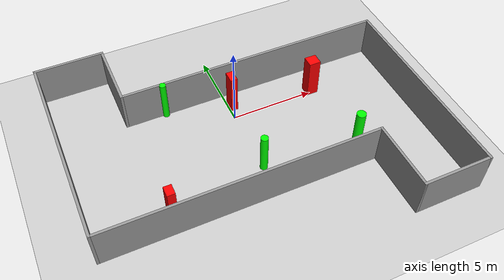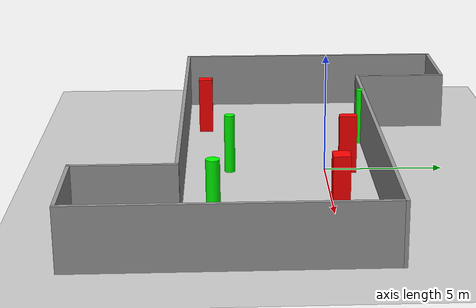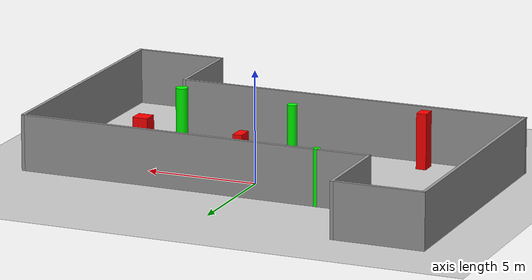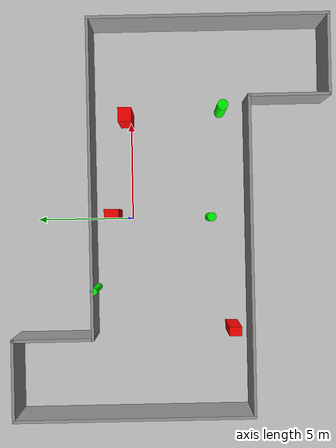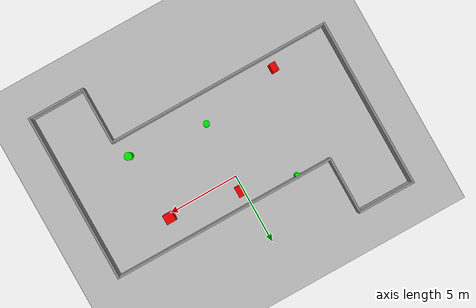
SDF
<sdf version="1.7">
 <world name="default">
  <light name="sun" type="directional">
   <pose>0 0 10 0 -0 0</pose>
   <diffuse>0.8 0.8 0.8 1</diffuse>
   <specular>0.2 0.2 0.2 1</specular>
   <attenuation>
    <range>1000</range>
    <constant>0.9</constant>
    <linear>0.01</linear>
    <quadratic>0.001</quadratic>
   </attenuation>
   <direction>-0.5 0.1 -0.9</direction>
   <spot><inner_angle>0</inner_angle><outer_angle>0</outer_angle><falloff>0</falloff></spot>
  </light>
  <model name="ground_plane">
   <static>1</static>
   <link name="link">
    <collision name="collision">
     <geometry><plane><normal>0 0 1</normal><size>100 100</size></plane></geometry>
     <surface>
      <contact><collide_bitmask>65535</collide_bitmask></contact>
      <friction><ode><mu>100</mu><mu2>50</mu2></ode></friction>
     </surface>
    </collision>
    <visual name="visual">
     <cast_shadows>0</cast_shadows>
     <geometry><plane><normal>0 0 1</normal><size>100 100</size></plane></geometry>
     <material>
      <script><uri>file://media/materials/scripts/gazebo.material</uri><name>Gazebo/Grey</name></script>
     </material>
    </visual>
   </link>
  </model>
  <gravity>0 0 -9.8</gravity>
  <magnetic_field>6e-06 2.3e-05 -4.2e-05</magnetic_field>
  <atmosphere type="adiabatic"/>
  <physics type="ode">
   <max_step_size>0.001</max_step_size>
   <real_time_factor>1</real_time_factor>
   <real_time_update_rate>1000</real_time_update_rate>
  </physics>
  <scene><ambient>0.4 0.4 0.4 1</ambient><background>0.7 0.7 0.7 1</background><shadows>1</shadows></scene>
  <spherical_coordinates>
   <surface_model>EARTH_WGS84</surface_model>
   <latitude_deg>0</latitude_deg>
   <longitude_deg>0</longitude_deg>
   <elevation>0</elevation>
   <heading_deg>0</heading_deg>
  </spherical_coordinates>
  <model name="my_base_walls">
   <link name="Wall_13">
    <collision name="Wall_13_Collision">
     <geometry><box><size>12.15 0.15 2.5</size></box></geometry>
     <pose>0 0 1.25 0 -0 0</pose>
    </collision>
    <visual name="Wall_13_Visual">
     <pose>0 0 1.25 0 -0 0</pose>
     <geometry><box><size>12.15 0.15 2.5</size></box></geometry>
     <material>
      <script><uri>file://media/materials/scripts/gazebo.material</uri><name>Gazebo/Grey</name></script>
      <ambient>1 1 1 1</ambient>
     </material>
     <meta><layer>0</layer></meta>
    </visual>
    <pose>10 -2 0 0 -0 1.5708</pose>
   </link>
   <link name="Wall_15">
    <collision name="Wall_15_Collision">
     <geometry><box><size>16.15 0.15 2.5</size></box></geometry>
     <pose>0 0 1.25 0 -0 0</pose>
    </collision>
    <visual name="Wall_15_Visual">
     <pose>0 0 1.25 0 -0 0</pose>
     <geometry><box><size>16.15 0.15 2.5</size></box></geometry>
     <material>
      <script><uri>file://media/materials/scripts/gazebo.material</uri><name>Gazebo/Grey</name></script>
      <ambient>1 1 1 1</ambient>
     </material>
     <meta><layer>0</layer></meta>
    </visual>
    <pose>2 4 0 0 -0 3.14159</pose>
   </link>
   <link name="Wall_17">
    <collision name="Wall_17_Collision">
     <geometry><box><size>4.15 0.15 2.5</size></box></geometry>
     <pose>0 0 1.25 0 -0 0</pose>
    </collision>
    <visual name="Wall_17_Visual">
     <pose>0 0 1.25 0 -0 0</pose>
     <geometry><box><size>4.15 0.15 2.5</size></box></geometry>
     <material>
      <script><uri>file://media/materials/scripts/gazebo.material</uri><name>Gazebo/Grey</name></script>
      <ambient>1 1 1 1</ambient>
     </material>
     <meta><layer>0</layer></meta>
    </visual>
    <pose>6 -6 0 0 -0 -1.5708</pose>
   </link>
   <link name="Wall_19">
    <collision name="Wall_19_Collision">
     <geometry><box><size>12.15 0.15 2.5</size></box></geometry>
     <pose>0 0 1.25 0 -0 0</pose>
    </collision>
    <visual name="Wall_19_Visual">
     <pose>0 0 1.25 0 -0 0</pose>
     <geometry><box><size>12.15 0.15 2.5</size></box></geometry>
     <material>
      <script><uri>file://media/materials/scripts/gazebo.material</uri><name>Gazebo/Grey</name></script>
      <ambient>1 1 1 1</ambient>
     </material>
     <meta><layer>0</layer></meta>
    </visual>
    <pose>-10 2 0 0 -0 1.5708</pose>
   </link>
   <link name="Wall_21">
    <collision name="Wall_21_Collision">
     <geometry><box><size>4.15 0.15 2.5</size></box></geometry>
     <pose>0 0 1.25 0 -0 0</pose>
    </collision>
    <visual name="Wall_21_Visual">
     <pose>0 0 1.25 0 -0 0</pose>
     <geometry><box><size>4.15 0.15 2.5</size></box></geometry>
     <material>
      <script><uri>file://media/materials/scripts/gazebo.material</uri><name>Gazebo/Grey</name></script>
      <ambient>1 1 1 1</ambient>
     </material>
     <meta><layer>0</layer></meta>
    </visual>
    <pose>-8 8 0 0 -0 0</pose>
   </link>
   <link name="Wall_23">
    <collision name="Wall_23_Collision">
     <geometry><box><size>4.15 0.15 2.5</size></box></geometry>
     <pose>0 0 1.25 0 -0 0</pose>
    </collision>
    <visual name="Wall_23_Visual">
     <pose>0 0 1.25 0 -0 0</pose>
     <geometry><box><size>4.15 0.15 2.5</size></box></geometry>
     <material>
      <script><uri>file://media/materials/scripts/gazebo.material</uri><name>Gazebo/Grey</name></script>
      <ambient>1 1 1 1</ambient>
     </material>
     <meta><layer>0</layer></meta>
    </visual>
    <pose>-6 6 0 0 -0 -1.5708</pose>
   </link>
   <link name="Wall_25">
    <collision name="Wall_25_Collision">
     <geometry><box><size>4.15 0.15 2.5</size></box></geometry>
     <pose>0 0 1.25 0 -0 0</pose>
    </collision>
    <visual name="Wall_25_Visual">
     <pose>0 0 1.25 0 -0 0</pose>
     <geometry><box><size>4.15 0.15 2.5</size></box></geometry>
     <material>
      <script><uri>file://media/materials/scripts/gazebo.material</uri><name>Gazebo/Grey</name></script>
      <ambient>1 1 1 1</ambient>
     </material>
     <meta><layer>0</layer></meta>
    </visual>
    <pose>8 -8 0 0 -0 0</pose>
   </link>
   <link name="Wall_9">
    <collision name="Wall_9_Collision">
     <geometry><box><size>16.15 0.15 2.5</size></box></geometry>
     <pose>0 0 1.25 0 -0 0</pose>
    </collision>
    <visual name="Wall_9_Visual">
     <pose>0 0 1.25 0 -0 0</pose>
     <geometry><box><size>16.15 0.15 2.5</size></box></geometry>
     <material>
      <script><uri>file://media/materials/scripts/gazebo.material</uri><name>Gazebo/Grey</name></script>
      <ambient>1 1 1 1</ambient>
     </material>
     <meta><layer>0</layer></meta>
    </visual>
    <pose>-2 -4 0 0 -0 3.14159</pose>
   </link>
   <static>1</static>
   <pose>-0 -2 0 0 -0 0</pose>
  </model>
  <model name="cylinder1">
   <static>1</static>
   <link name="link">
    <inertial>
     <mass>1</mass>
     <inertia><ixx>0.5</ixx><ixy>0</ixy><ixz>0</ixz><iyy>0.5</iyy><iyz>0</iyz><izz>1</izz></inertia>
    </inertial>
    <collision name="collision">
     <geometry><cylinder><radius>0.2729244745131114</radius><length>2.5</length></cylinder></geometry>
    </collision>
    <visual name="visual">
     <geometry><cylinder><radius>0.2729244745131114</radius><length>2.5</length></cylinder></geometry>
     <material>
      <ambient>0 1 0 1</ambient>
      <diffuse>0 1 0 1</diffuse>
      <specular>0.1 0.1 0.1 1</specular>
      <emissive>0 0 0 0</emissive>
     </material>
    </visual>
   </link>
   <pose>5.535576343798343 -4.679653715214701 1.25 0 0 0</pose>
  </model>
  <model name="cylinder2">
   <static>1</static>
   <link name="link">
    <inertial>
     <mass>1</mass>
     <inertia><ixx>0.5</ixx><ixy>0</ixy><ixz>0</ixz><iyy>0.5</iyy><iyz>0</iyz><izz>1</izz></inertia>
    </inertial>
    <collision name="collision">
     <geometry><cylinder><radius>0.2203541497724108</radius><length>2.5</length></cylinder></geometry>
    </collision>
    <visual name="visual">
     <geometry><cylinder><radius>0.2203541497724108</radius><length>2.5</length></cylinder></geometry>
     <material>
      <ambient>0 1 0 1</ambient>
      <diffuse>0 1 0 1</diffuse>
      <specular>0.1 0.1 0.1 1</specular>
      <emissive>0 0 0 0</emissive>
     </material>
    </visual>
   </link>
   <pose>-0.012464669447598276 -4.03224211209878 1.25 0 0 0</pose>
  </model>
  <model name="cylinder3">
   <static>1</static>
   <link name="link">
    <inertial>
     <mass>1</mass>
     <inertia><ixx>0.5</ixx><ixy>0</ixy><ixz>0</ixz><iyy>0.5</iyy><iyz>0</iyz><izz>1</izz></inertia>
    </inertial>
    <collision name="collision">
     <geometry><cylinder><radius>0.18696102796087546</radius><length>2.5</length></cylinder></geometry>
    </collision>
    <visual name="visual">
     <geometry><cylinder><radius>0.18696102796087546</radius><length>2.5</length></cylinder></geometry>
     <material>
      <ambient>0 1 0 1</ambient>
      <diffuse>0 1 0 1</diffuse>
      <specular>0.1 0.1 0.1 1</specular>
      <emissive>0 0 0 0</emissive>
     </material>
    </visual>
   </link>
   <pose>-3.609436471161657 1.908180380955093 1.25 0 0 0</pose>
  </model>
  <model name="box1">
   <static>1</static>
   <link name="link">
    <inertial>
     <mass>1</mass>
     <inertia><ixx>0.083</ixx><ixy>0</ixy><ixz>0</ixz><iyy>0.083</iyy><iyz>0</iyz><izz>0.083</izz></inertia>
    </inertial>
    <collision name="collision">
     <geometry><box><size>0.6996806523233806 0.6778575061907921 2.5</size></box></geometry>
    </collision>
    <visual name="visual">
     <geometry><box><size>0.6996806523233806 0.6778575061907921 2.5</size></box></geometry>
     <material>
      <ambient>1 0 0 1</ambient>
      <diffuse>1 0 0 1</diffuse>
      <specular>0.1 0.1 0.1 1</specular>
      <emissive>0 0 0 0</emissive>
     </material>
    </visual>
    <sensor name="my_contact" type="contact">
     <contact><collision>box_collision</collision><topic>__default_topic__</topic></contact>
    </sensor>
   </link>
   <pose>5.151807417062807 0.20734939760949267 1.25 0 0 0</pose>
  </model>
  <model name="box2">
   <static>1</static>
   <link name="link">
    <inertial>
     <mass>1</mass>
     <inertia><ixx>0.083</ixx><ixy>0</ixy><ixz>0</ixz><iyy>0.083</iyy><iyz>0</iyz><izz>0.083</izz></inertia>
    </inertial>
    <collision name="collision">
     <geometry><box><size>0.41187114758305415 0.7329880313904159 2.5</size></box></geometry>
    </collision>
    <visual name="visual">
     <geometry><box><size>0.41187114758305415 0.7329880313904159 2.5</size></box></geometry>
     <material>
      <ambient>1 0 0 1</ambient>
      <diffuse>1 0 0 1</diffuse>
      <specular>0.1 0.1 0.1 1</specular>
      <emissive>0 0 0 0</emissive>
     </material>
    </visual>
    <sensor name="my_contact" type="contact">
     <contact><collision>box_collision</collision><topic>__default_topic__</topic></contact>
    </sensor>
   </link>
   <pose>0.2583402603743252 0.9505394668643516 1.25 0 0 0</pose>
  </model>
  <model name="box3">
   <static>1</static>
   <link name="link">
    <inertial>
     <mass>1</mass>
     <inertia><ixx>0.083</ixx><ixy>0</ixy><ixz>0</ixz><iyy>0.083</iyy><iyz>0</iyz><izz>0.083</izz></inertia>
    </inertial>
    <collision name="collision">
     <geometry><box><size>0.4570828188708487 0.6233911208544853 2.5</size></box></geometry>
    </collision>
    <visual name="visual">
     <geometry><box><size>0.4570828188708487 0.6233911208544853 2.5</size></box></geometry>
     <material>
      <ambient>1 0 0 1</ambient>
      <diffuse>1 0 0 1</diffuse>
      <specular>0.1 0.1 0.1 1</specular>
      <emissive>0 0 0 0</emissive>
     </material>
    </visual>
    <sensor name="my_contact" type="contact">
     <contact><collision>box_collision</collision><topic>__default_topic__</topic></contact>
    </sensor>
   </link>
   <pose>-5.7191142194679845 -5.1057493482201375 1.25 0 0 0</pose>
  </model>
 </world>
</sdf>
